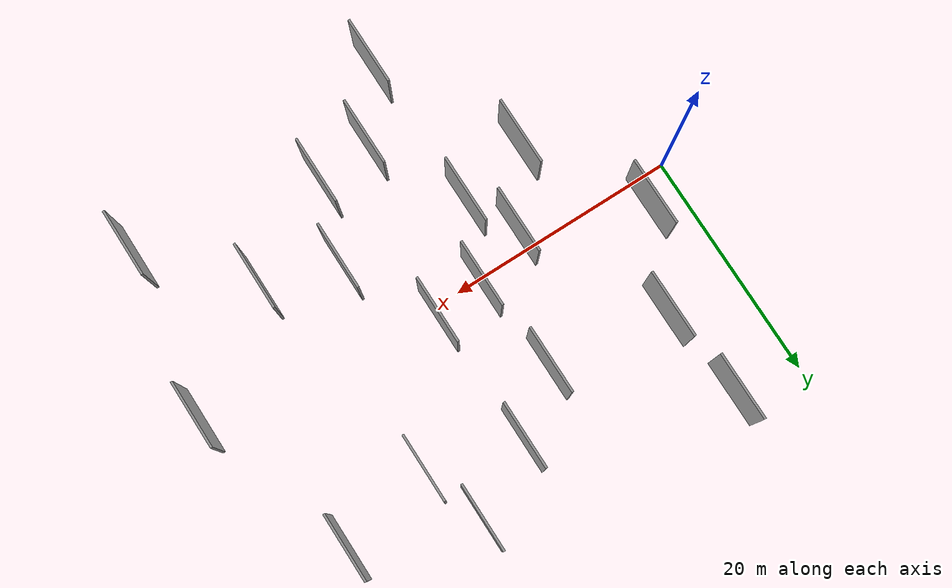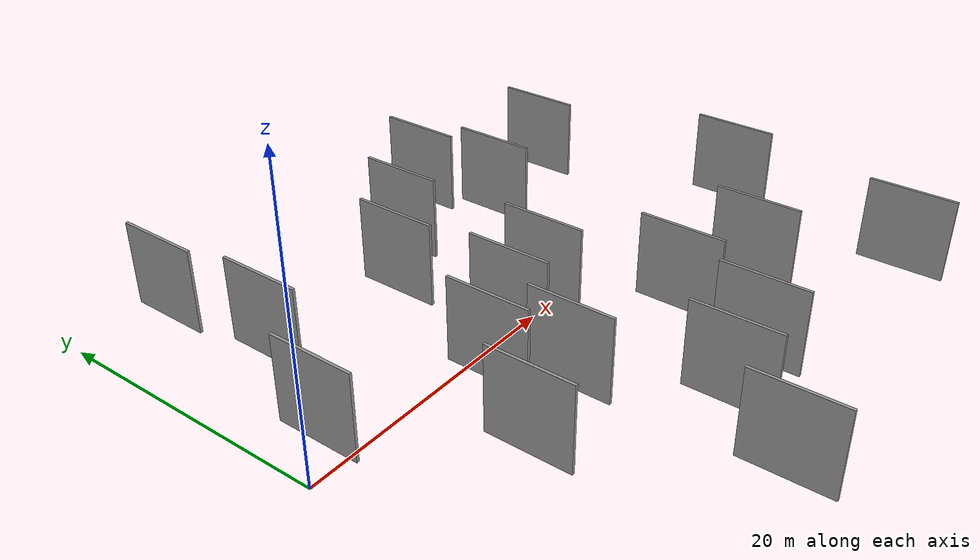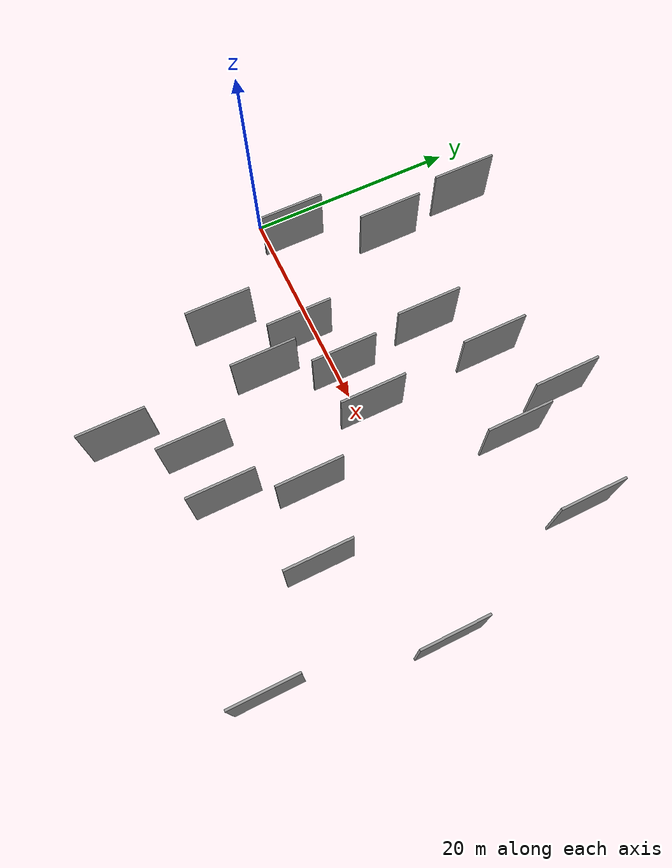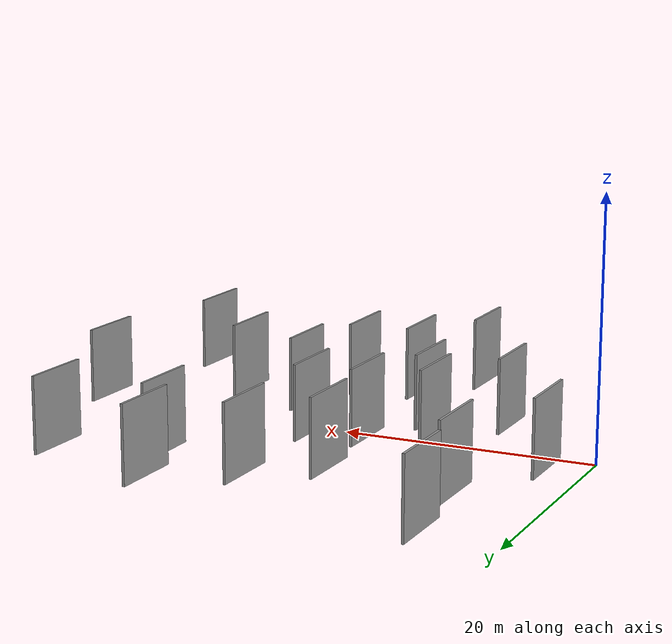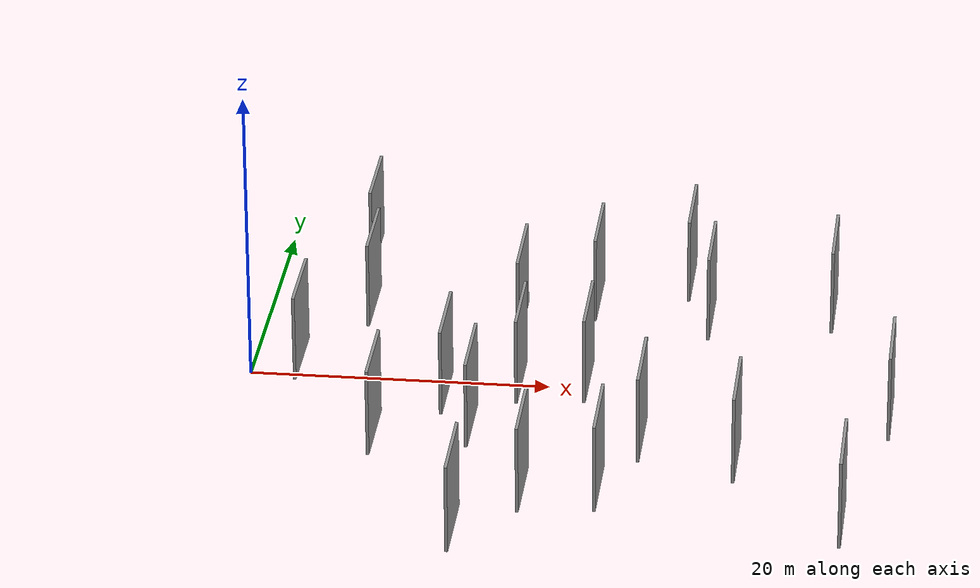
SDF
<sdf version="1.6">
 <world name="default">
  <scene>
   <sky><clouds><speed>12</speed></clouds></sky>
   <ambient>0.4 0.4 0.4 1</ambient>
   <background>0.7 0.7 0.7 1</background>
   <shadows>1</shadows>
  </scene>
  <gravity>0 0 -9.8066</gravity>
  <magnetic_field>6e-06 2.3e-05 -4.2e-05</magnetic_field>
  <physics default="0" name="default_physics" type="ode">
   <ode>
    <solver>
     <type>quick</type>
     <iters>10</iters>
     <sor>1.0</sor>
     <use_dynamic_moi_rescaling>0</use_dynamic_moi_rescaling>
    </solver>
    <constraints>
     <cfm>0</cfm>
     <erp>0.2</erp>
     <contact_max_correcting_vel>100</contact_max_correcting_vel>
     <contact_surface_layer>0.001</contact_surface_layer>
    </constraints>
   </ode>
   <max_step_size>0.004</max_step_size>
   <real_time_factor>1</real_time_factor>
   <real_time_update_rate>250</real_time_update_rate>
  </physics>
  <light name="sun" type="directional">
   <pose>0 0 10 0 0 0</pose>
   <diffuse>0.8 0.8 0.8 1</diffuse>
   <specular>0.2 0.2 0.2 1</specular>
   <attenuation>
    <range>1000</range>
    <constant>0.9</constant>
    <linear>0.01</linear>
    <quadratic>0.001</quadratic>
   </attenuation>
   <direction>-0.5 0.1 -0.9</direction>
  </light>
  <model name="grey_wall_1">
   <static>1</static>
   <pose>22.0301 12.8637 0.0 0.000000 0.000000 1.570796</pose>
   <link name="link">
    <pose>0 0 3.00 0 0 0</pose>
    <collision name="collision"><geometry><box><size>6.00 0.2 6.00</size></box></geometry></collision>
    <visual name="visual">
     <cast_shadows>0</cast_shadows>
     <geometry><box><size>6.00 0.2 6.00</size></box></geometry>
     <material>
      <script>
       <uri>model://grey_wall/materials/scripts</uri>
       <uri>model://grey_wall/materials/textures</uri>
       <name>vrc/grey_wall</name>
      </script>
     </material>
    </visual>
   </link>
  </model>
  <model name="grey_wall_2">
   <static>1</static>
   <pose>38.0892 12.6469 0.0 0.000000 0.000000 1.570796</pose>
   <link name="link">
    <pose>0 0 3.00 0 0 0</pose>
    <collision name="collision"><geometry><box><size>6.00 0.2 6.00</size></box></geometry></collision>
    <visual name="visual">
     <cast_shadows>0</cast_shadows>
     <geometry><box><size>6.00 0.2 6.00</size></box></geometry>
     <material>
      <script>
       <uri>model://grey_wall/materials/scripts</uri>
       <uri>model://grey_wall/materials/textures</uri>
       <name>vrc/grey_wall</name>
      </script>
     </material>
    </visual>
   </link>
  </model>
  <model name="grey_wall_3">
   <static>1</static>
   <pose>24.5456 -13.4512 0.0 0.000000 0.000000 1.570796</pose>
   <link name="link">
    <pose>0 0 3.00 0 0 0</pose>
    <collision name="collision"><geometry><box><size>6.00 0.2 6.00</size></box></geometry></collision>
    <visual name="visual">
     <cast_shadows>0</cast_shadows>
     <geometry><box><size>6.00 0.2 6.00</size></box></geometry>
     <material>
      <script>
       <uri>model://grey_wall/materials/scripts</uri>
       <uri>model://grey_wall/materials/textures</uri>
       <name>vrc/grey_wall</name>
      </script>
     </material>
    </visual>
   </link>
  </model>
  <model name="grey_wall_4">
   <static>1</static>
   <pose>28.1130 16.3648 0.0 0.000000 0.000000 1.570796</pose>
   <link name="link">
    <pose>0 0 3.00 0 0 0</pose>
    <collision name="collision"><geometry><box><size>6.00 0.2 6.00</size></box></geometry></collision>
    <visual name="visual">
     <cast_shadows>0</cast_shadows>
     <geometry><box><size>6.00 0.2 6.00</size></box></geometry>
     <material>
      <script>
       <uri>model://grey_wall/materials/scripts</uri>
       <uri>model://grey_wall/materials/textures</uri>
       <name>vrc/grey_wall</name>
      </script>
     </material>
    </visual>
   </link>
  </model>
  <model name="grey_wall_5">
   <static>1</static>
   <pose>15.4541 -5.8324 0.0 0.000000 0.000000 1.570796</pose>
   <link name="link">
    <pose>0 0 3.00 0 0 0</pose>
    <collision name="collision"><geometry><box><size>6.00 0.2 6.00</size></box></geometry></collision>
    <visual name="visual">
     <cast_shadows>0</cast_shadows>
     <geometry><box><size>6.00 0.2 6.00</size></box></geometry>
     <material>
      <script>
       <uri>model://grey_wall/materials/scripts</uri>
       <uri>model://grey_wall/materials/textures</uri>
       <name>vrc/grey_wall</name>
      </script>
     </material>
    </visual>
   </link>
  </model>
  <model name="grey_wall_6">
   <static>1</static>
   <pose>17.1811 9.0823 0.0 0.000000 0.000000 1.570796</pose>
   <link name="link">
    <pose>0 0 3.00 0 0 0</pose>
    <collision name="collision"><geometry><box><size>6.00 0.2 6.00</size></box></geometry></collision>
    <visual name="visual">
     <cast_shadows>0</cast_shadows>
     <geometry><box><size>6.00 0.2 6.00</size></box></geometry>
     <material>
      <script>
       <uri>model://grey_wall/materials/scripts</uri>
       <uri>model://grey_wall/materials/textures</uri>
       <name>vrc/grey_wall</name>
      </script>
     </material>
    </visual>
   </link>
  </model>
  <model name="grey_wall_7">
   <static>1</static>
   <pose>33.0293 -8.8493 0.0 0.000000 0.000000 1.570796</pose>
   <link name="link">
    <pose>0 0 3.00 0 0 0</pose>
    <collision name="collision"><geometry><box><size>6.00 0.2 6.00</size></box></geometry></collision>
    <visual name="visual">
     <cast_shadows>0</cast_shadows>
     <geometry><box><size>6.00 0.2 6.00</size></box></geometry>
     <material>
      <script>
       <uri>model://grey_wall/materials/scripts</uri>
       <uri>model://grey_wall/materials/textures</uri>
       <name>vrc/grey_wall</name>
      </script>
     </material>
    </visual>
   </link>
  </model>
  <model name="grey_wall_8">
   <static>1</static>
   <pose>40.2877 -16.5880 0.0 0.000000 0.000000 1.570796</pose>
   <link name="link">
    <pose>0 0 3.00 0 0 0</pose>
    <collision name="collision"><geometry><box><size>6.00 0.2 6.00</size></box></geometry></collision>
    <visual name="visual">
     <cast_shadows>0</cast_shadows>
     <geometry><box><size>6.00 0.2 6.00</size></box></geometry>
     <material>
      <script>
       <uri>model://grey_wall/materials/scripts</uri>
       <uri>model://grey_wall/materials/textures</uri>
       <name>vrc/grey_wall</name>
      </script>
     </material>
    </visual>
   </link>
  </model>
  <model name="grey_wall_9">
   <static>1</static>
   <pose>5.9375 18.7301 0.0 0.000000 0.000000 1.570796</pose>
   <link name="link">
    <pose>0 0 3.00 0 0 0</pose>
    <collision name="collision"><geometry><box><size>6.00 0.2 6.00</size></box></geometry></collision>
    <visual name="visual">
     <cast_shadows>0</cast_shadows>
     <geometry><box><size>6.00 0.2 6.00</size></box></geometry>
     <material>
      <script>
       <uri>model://grey_wall/materials/scripts</uri>
       <uri>model://grey_wall/materials/textures</uri>
       <name>vrc/grey_wall</name>
      </script>
     </material>
    </visual>
   </link>
  </model>
  <model name="grey_wall_10">
   <static>1</static>
   <pose>29.8782 10.8072 0.0 0.000000 0.000000 1.570796</pose>
   <link name="link">
    <pose>0 0 3.00 0 0 0</pose>
    <collision name="collision"><geometry><box><size>6.00 0.2 6.00</size></box></geometry></collision>
    <visual name="visual">
     <cast_shadows>0</cast_shadows>
     <geometry><box><size>6.00 0.2 6.00</size></box></geometry>
     <material>
      <script>
       <uri>model://grey_wall/materials/scripts</uri>
       <uri>model://grey_wall/materials/textures</uri>
       <name>vrc/grey_wall</name>
      </script>
     </material>
    </visual>
   </link>
  </model>
  <model name="grey_wall_11">
   <static>1</static>
   <pose>9.2517 -7.4460 0.0 0.000000 0.000000 1.570796</pose>
   <link name="link">
    <pose>0 0 3.00 0 0 0</pose>
    <collision name="collision"><geometry><box><size>6.00 0.2 6.00</size></box></geometry></collision>
    <visual name="visual">
     <cast_shadows>0</cast_shadows>
     <geometry><box><size>6.00 0.2 6.00</size></box></geometry>
     <material>
      <script>
       <uri>model://grey_wall/materials/scripts</uri>
       <uri>model://grey_wall/materials/textures</uri>
       <name>vrc/grey_wall</name>
      </script>
     </material>
    </visual>
   </link>
  </model>
  <model name="grey_wall_12">
   <static>1</static>
   <pose>3.0282 2.3783 0.0 0.000000 0.000000 1.570796</pose>
   <link name="link">
    <pose>0 0 3.00 0 0 0</pose>
    <collision name="collision"><geometry><box><size>6.00 0.2 6.00</size></box></geometry></collision>
    <visual name="visual">
     <cast_shadows>0</cast_shadows>
     <geometry><box><size>6.00 0.2 6.00</size></box></geometry>
     <material>
      <script>
       <uri>model://grey_wall/materials/scripts</uri>
       <uri>model://grey_wall/materials/textures</uri>
       <name>vrc/grey_wall</name>
      </script>
     </material>
    </visual>
   </link>
  </model>
  <model name="grey_wall_13">
   <static>1</static>
   <pose>42.6513 -2.1871 0.0 0.000000 0.000000 1.570796</pose>
   <link name="link">
    <pose>0 0 3.00 0 0 0</pose>
    <collision name="collision"><geometry><box><size>6.00 0.2 6.00</size></box></geometry></collision>
    <visual name="visual">
     <cast_shadows>0</cast_shadows>
     <geometry><box><size>6.00 0.2 6.00</size></box></geometry>
     <material>
      <script>
       <uri>model://grey_wall/materials/scripts</uri>
       <uri>model://grey_wall/materials/textures</uri>
       <name>vrc/grey_wall</name>
      </script>
     </material>
    </visual>
   </link>
  </model>
  <model name="grey_wall_14">
   <static>1</static>
   <pose>18.0184 0.5225 0.0 0.000000 0.000000 1.570796</pose>
   <link name="link">
    <pose>0 0 3.00 0 0 0</pose>
    <collision name="collision"><geometry><box><size>6.00 0.2 6.00</size></box></geometry></collision>
    <visual name="visual">
     <cast_shadows>0</cast_shadows>
     <geometry><box><size>6.00 0.2 6.00</size></box></geometry>
     <material>
      <script>
       <uri>model://grey_wall/materials/scripts</uri>
       <uri>model://grey_wall/materials/textures</uri>
       <name>vrc/grey_wall</name>
      </script>
     </material>
    </visual>
   </link>
  </model>
  <model name="grey_wall_15">
   <static>1</static>
   <pose>6.8391 10.5513 0.0 0.000000 0.000000 1.570796</pose>
   <link name="link">
    <pose>0 0 3.00 0 0 0</pose>
    <collision name="collision"><geometry><box><size>6.00 0.2 6.00</size></box></geometry></collision>
    <visual name="visual">
     <cast_shadows>0</cast_shadows>
     <geometry><box><size>6.00 0.2 6.00</size></box></geometry>
     <material>
      <script>
       <uri>model://grey_wall/materials/scripts</uri>
       <uri>model://grey_wall/materials/textures</uri>
       <name>vrc/grey_wall</name>
      </script>
     </material>
    </visual>
   </link>
  </model>
  <model name="grey_wall_16">
   <static>1</static>
   <pose>19.7009 -14.0863 0.0 0.000000 0.000000 1.570796</pose>
   <link name="link">
    <pose>0 0 3.00 0 0 0</pose>
    <collision name="collision"><geometry><box><size>6.00 0.2 6.00</size></box></geometry></collision>
    <visual name="visual">
     <cast_shadows>0</cast_shadows>
     <geometry><box><size>6.00 0.2 6.00</size></box></geometry>
     <material>
      <script>
       <uri>model://grey_wall/materials/scripts</uri>
       <uri>model://grey_wall/materials/textures</uri>
       <name>vrc/grey_wall</name>
      </script>
     </material>
    </visual>
   </link>
  </model>
  <model name="grey_wall_17">
   <static>1</static>
   <pose>15.8676 -19.5387 0.0 0.000000 0.000000 1.570796</pose>
   <link name="link">
    <pose>0 0 3.00 0 0 0</pose>
    <collision name="collision"><geometry><box><size>6.00 0.2 6.00</size></box></geometry></collision>
    <visual name="visual">
     <cast_shadows>0</cast_shadows>
     <geometry><box><size>6.00 0.2 6.00</size></box></geometry>
     <material>
      <script>
       <uri>model://grey_wall/materials/scripts</uri>
       <uri>model://grey_wall/materials/textures</uri>
       <name>vrc/grey_wall</name>
      </script>
     </material>
    </visual>
   </link>
  </model>
  <model name="grey_wall_18">
   <static>1</static>
   <pose>13.2717 -1.5242 0.0 0.000000 0.000000 1.570796</pose>
   <link name="link">
    <pose>0 0 3.00 0 0 0</pose>
    <collision name="collision"><geometry><box><size>6.00 0.2 6.00</size></box></geometry></collision>
    <visual name="visual">
     <cast_shadows>0</cast_shadows>
     <geometry><box><size>6.00 0.2 6.00</size></box></geometry>
     <material>
      <script>
       <uri>model://grey_wall/materials/scripts</uri>
       <uri>model://grey_wall/materials/textures</uri>
       <name>vrc/grey_wall</name>
      </script>
     </material>
    </visual>
   </link>
  </model>
  <model name="grey_wall_19">
   <static>1</static>
   <pose>22.4625 1.0738 0.0 0.000000 0.000000 1.570796</pose>
   <link name="link">
    <pose>0 0 3.00 0 0 0</pose>
    <collision name="collision"><geometry><box><size>6.00 0.2 6.00</size></box></geometry></collision>
    <visual name="visual">
     <cast_shadows>0</cast_shadows>
     <geometry><box><size>6.00 0.2 6.00</size></box></geometry>
     <material>
      <script>
       <uri>model://grey_wall/materials/scripts</uri>
       <uri>model://grey_wall/materials/textures</uri>
       <name>vrc/grey_wall</name>
      </script>
     </material>
    </visual>
   </link>
  </model>
  <model name="grey_wall_20">
   <static>1</static>
   <pose>26.7102 -6.7051 0.0 0.000000 0.000000 1.570796</pose>
   <link name="link">
    <pose>0 0 3.00 0 0 0</pose>
    <collision name="collision"><geometry><box><size>6.00 0.2 6.00</size></box></geometry></collision>
    <visual name="visual">
     <cast_shadows>0</cast_shadows>
     <geometry><box><size>6.00 0.2 6.00</size></box></geometry>
     <material>
      <script>
       <uri>model://grey_wall/materials/scripts</uri>
       <uri>model://grey_wall/materials/textures</uri>
       <name>vrc/grey_wall</name>
      </script>
     </material>
    </visual>
   </link>
  </model>
 </world>
</sdf>
